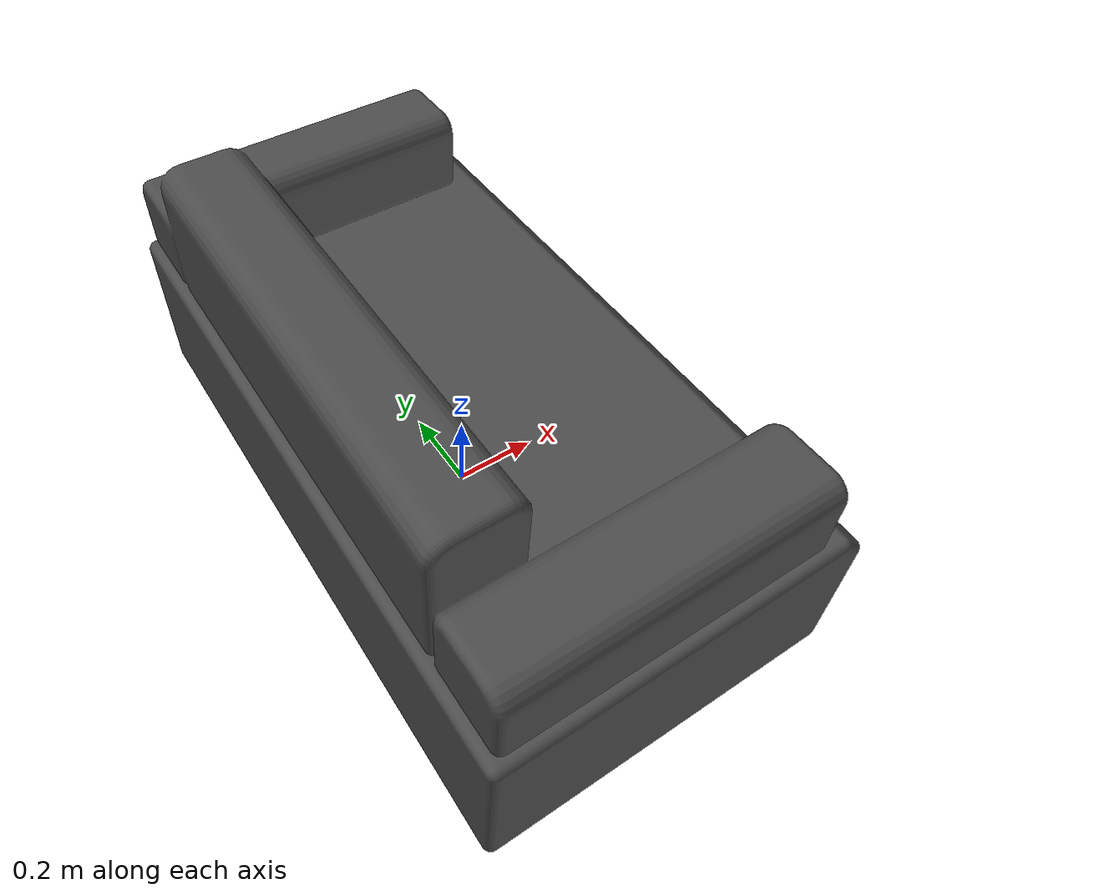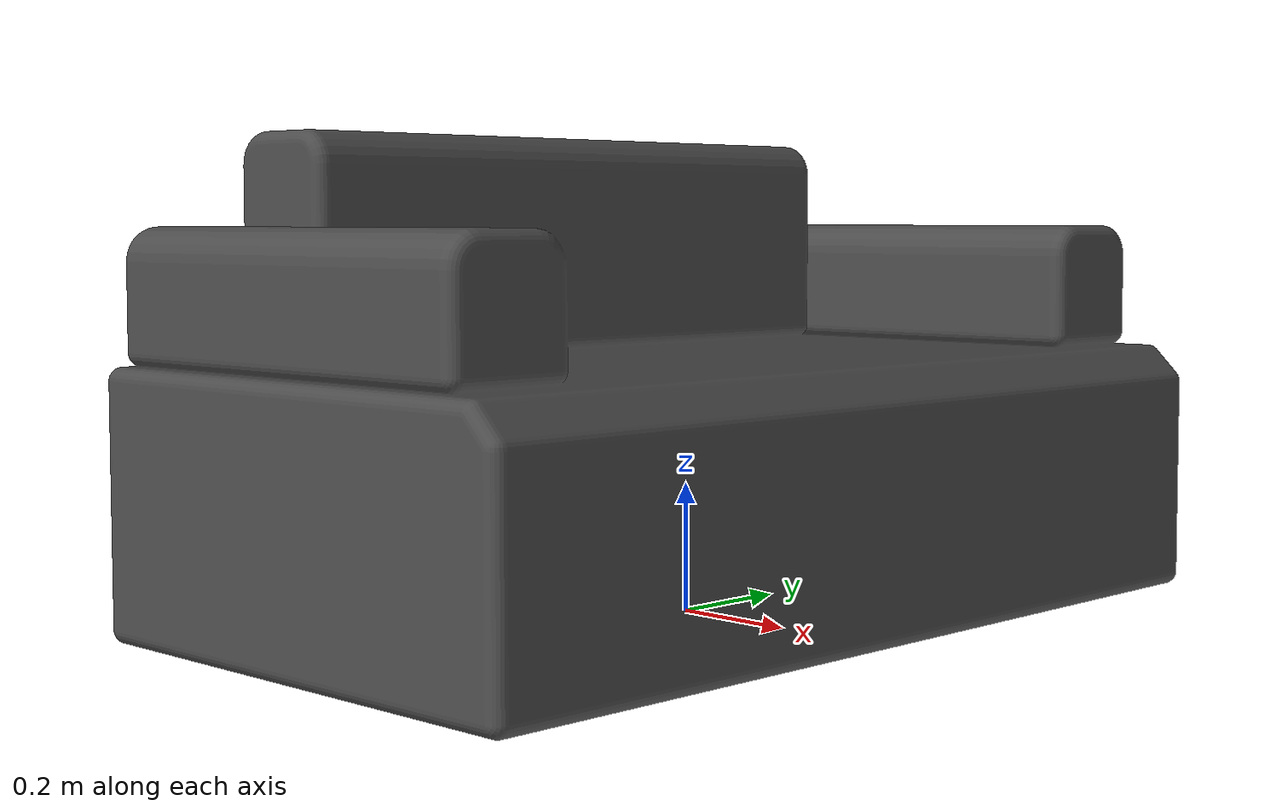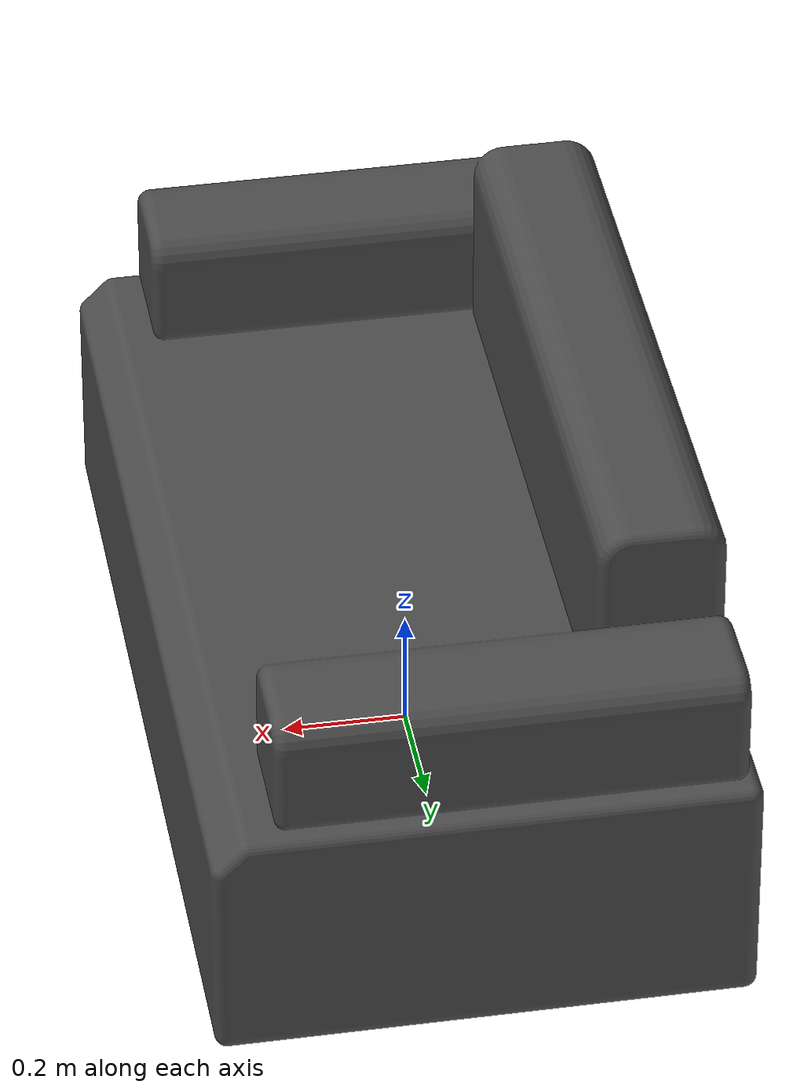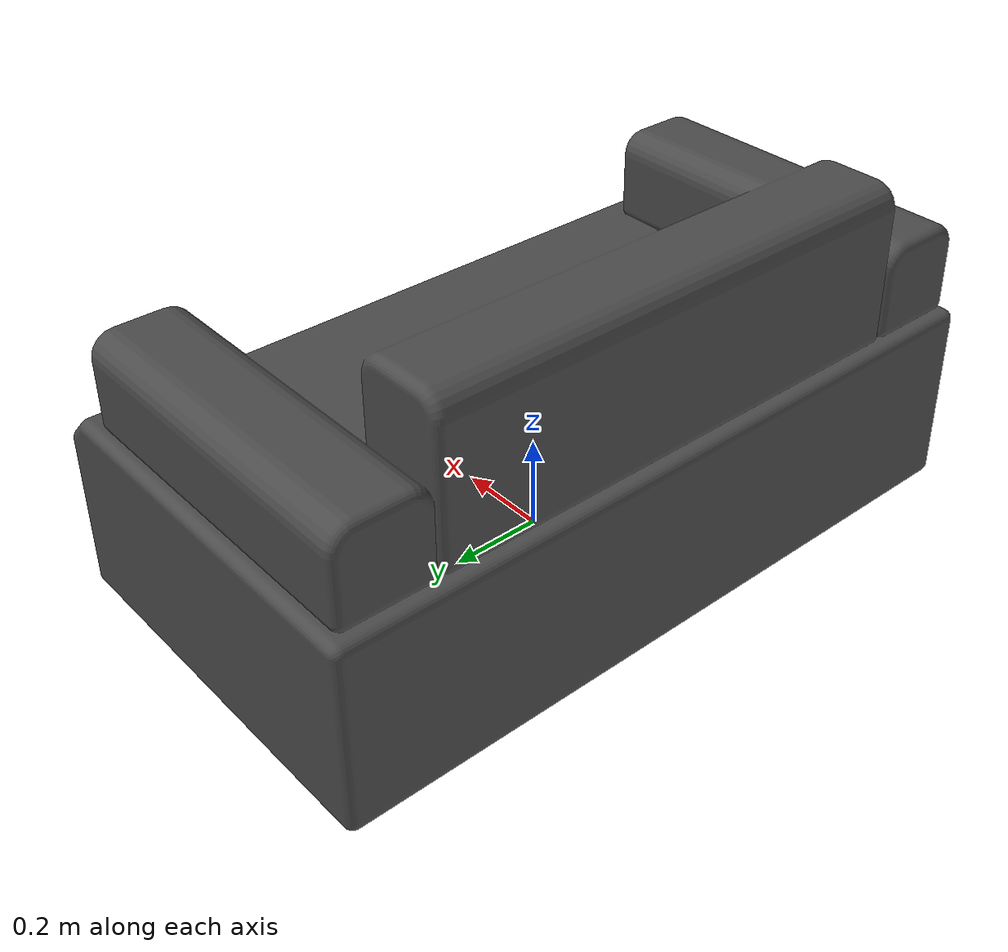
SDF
<?xml version="1.0" ?>

<sdf version="1.5">
  <model name="rgiro_yamazen_sofa_double">
    <static>1</static>
    <link name="link">
      <visual name="visual">
        <geometry>
          <mesh>
            <uri>model://rgiro_yamazen_sofa_double/meshes/rgiro_yamazen_sofa_double.dae</uri>
          </mesh>
        </geometry>
        <material>
          <script>
            <uri>file://media/materials/scripts/gazebo.material</uri>
            <name>Gazebo/DarkGrey</name>
          </script>
        </material>
      </visual>
      <collision name="collision">
        <geometry>
          <mesh>
            <uri>model://rgiro_yamazen_sofa_double/meshes/rgiro_yamazen_sofa_double.dae</uri>
          </mesh>
        </geometry>
      </collision>
    </link>
  </model>
</sdf>
